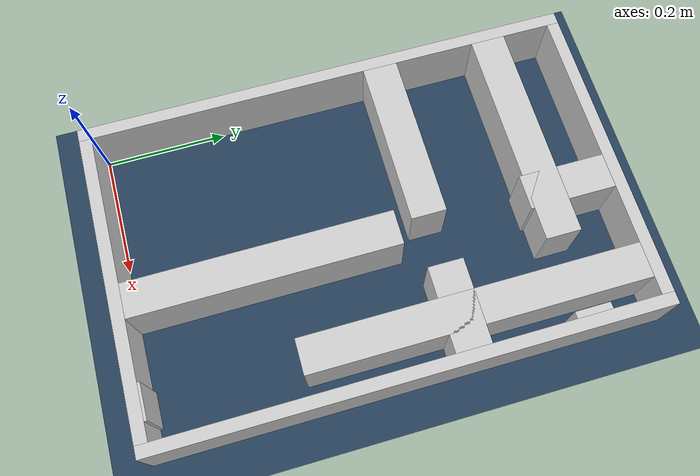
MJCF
<?xml version="1.0" ?>
<mujoco model="generated_real_template">
  <compiler angle="degree"/>
  <option timestep="0.002" integrator="implicitfast" iterations="100" cone="elliptic"/>
  <default>
    <geom density="1"/>
  </default>
  <asset>
    <texture builtin="gradient" height="3072" rgb1="0.3 0.5 0.7" rgb2="0 0 0" type="skybox" width="512"/>
    <texture builtin="checker" height="300" mark="edge" markrgb="0.8 0.8 0.8" name="groundplane" rgb1="0.2 0.3 0.4" rgb2="0.1 0.2 0.3" type="2d" width="300"/>
    <material name="groundplane" reflectance="0.2" texrepeat="5 5" texture="groundplane" texuniform="true"/>
  </asset>
  <worldbody>
    <light dir="0 0 -1" directional="true" pos="0 0 1.5"/>
    <geom name="floor" type="plane" condim="4" friction="0.5 0.005 0.001" material="groundplane" size="0 0 0.05"/>
    <body name="walls">
      <geom name="wall_boundary_left" type="box" condim="4" friction="1.0 0.005 0.0001" rgba="0.8 0.8 0.8 1" pos="-0.010000 0.387500 0.050000" euler="0 0 0.000000" size="0.010000 0.407500 0.050000"/>
      <geom name="wall_boundary_right" type="box" condim="4" friction="1.0 0.005 0.0001" rgba="0.8 0.8 0.8 1" pos="0.500000 0.387500 0.050000" euler="0 0 0.000000" size="0.010000 0.407500 0.050000"/>
      <geom name="wall_boundary_bottom" type="box" condim="4" friction="1.0 0.005 0.0001" rgba="0.8 0.8 0.8 1" pos="0.245000 -0.010000 0.050000" euler="0 0 0.000000" size="0.245000 0.010000 0.050000"/>
      <geom name="wall_boundary_top" type="box" condim="4" friction="1.0 0.005 0.0001" rgba="0.8 0.8 0.8 1" pos="0.245000 0.785000 0.050000" euler="0 0 0.000000" size="0.245000 0.010000 0.050000"/>
      <geom name="wall_inner_1_1" type="box" condim="4" friction="1.0 0.005 0.0001" rgba="0.8 0.8 0.8 1" pos="0.278893 0.214839 0.050000" euler="0 0 90.000000" size="0.214839 0.028500 0.050000"/>
      <geom name="wall_inner_1_2" type="box" condim="4" friction="1.0 0.005 0.0001" rgba="0.8 0.8 0.8 1" pos="0.278893 0.705172 0.050000" euler="0 0 90.000000" size="0.069828 0.028500 0.050000"/>
      <geom name="wall_inner_2_1" type="box" condim="4" friction="1.0 0.005 0.0001" rgba="0.8 0.8 0.8 1" pos="0.432290 0.002223 0.050000" euler="0 0 90.000000" size="0.002223 0.028500 0.050000"/>
      <geom name="wall_inner_2_2" type="box" condim="4" friction="1.0 0.005 0.0001" rgba="0.8 0.8 0.8 1" pos="0.432290 0.503838 0.050000" euler="0 0 90.000000" size="0.271162 0.028500 0.050000"/>
      <geom name="wall_inner_3_1" type="box" condim="4" friction="1.0 0.005 0.0001" rgba="0.8 0.8 0.8 1" pos="0.180202 0.668974 0.050000" euler="0 0 0.000000" size="0.180202 0.028500 0.050000"/>
      <geom name="wall_inner_3_2" type="box" condim="4" friction="1.0 0.005 0.0001" rgba="0.8 0.8 0.8 1" pos="0.484525 0.668974 0.050000" euler="0 0 0.000000" size="0.005475 0.028500 0.050000"/>
      <geom name="wall_inner_4_1" type="box" condim="4" friction="1.0 0.005 0.0001" rgba="0.8 0.8 0.8 1" pos="0.136184 0.480497 0.050000" euler="0 0 0.000000" size="0.136184 0.028500 0.050000"/>
      <geom name="wall_inner_4_2" type="box" condim="4" friction="1.0 0.005 0.0001" rgba="0.8 0.8 0.8 1" pos="0.421862 0.480497 0.050000" euler="0 0 0.000000" size="0.068138 0.028500 0.050000"/>
    </body>
  </worldbody>
</mujoco>
